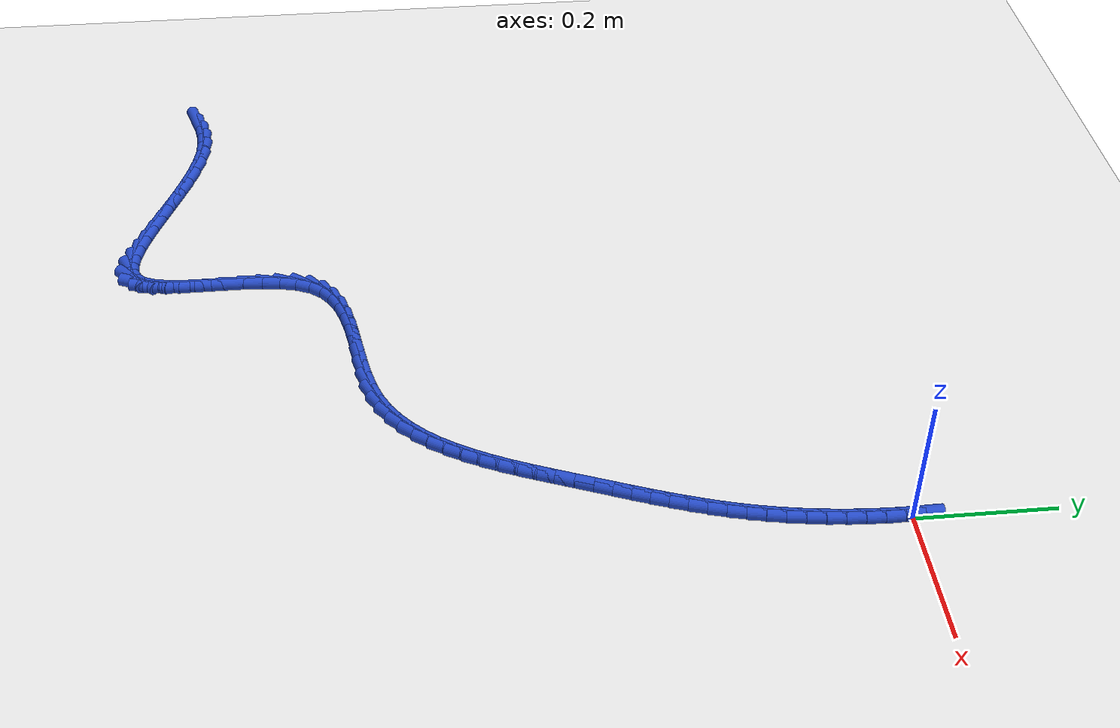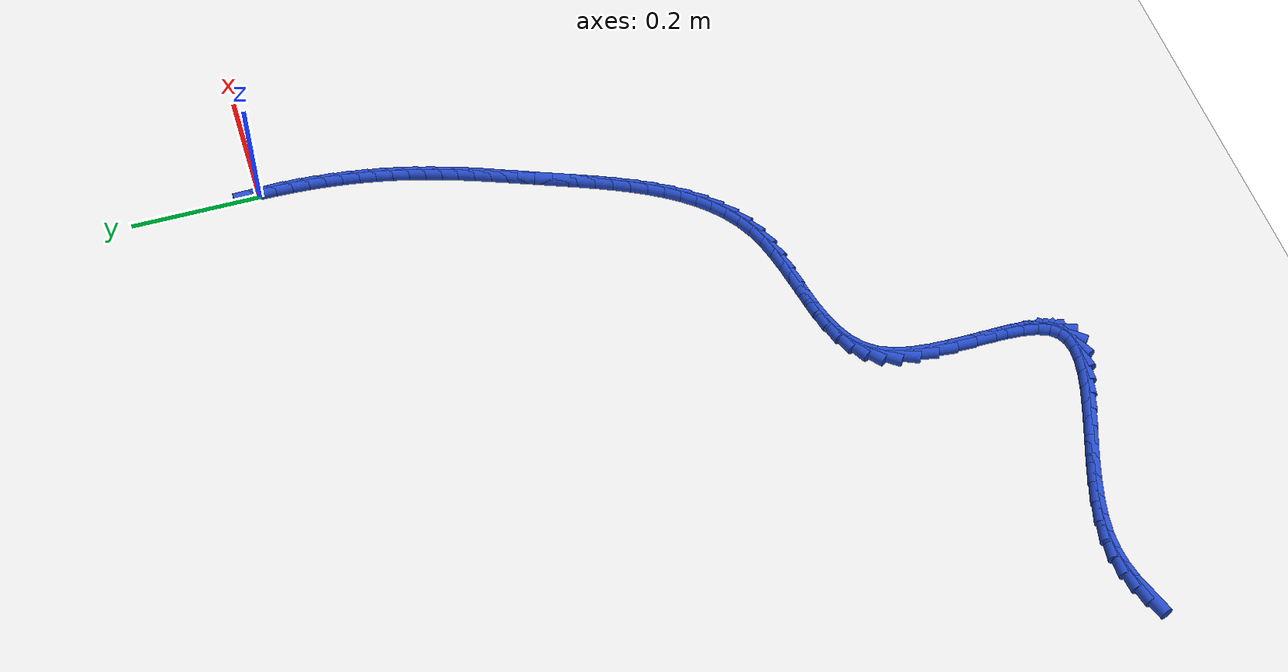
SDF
<sdf version="1.6">
 <world name="default">
  <model name="ground_plane">
   <static>1</static>
   <link name="link">
    <collision name="collision">
     <geometry><plane><normal>0 0 1</normal><size>100 100</size></plane></geometry>
     <surface><friction><ode><mu>100</mu><mu2>50</mu2></ode></friction></surface>
    </collision>
    <visual name="visual">
     <cast_shadows>0</cast_shadows>
     <geometry><plane><normal>0 0 1</normal><size>100 100</size></plane></geometry>
     <material>
      <script><uri>file://media/materials/scripts/gazebo.material</uri><name>Gazebo/WhiteGlow</name></script>
     </material>
    </visual>
   </link>
  </model>
  <model name="line">
   <link name="link_0">
    <pose>-1.3010426069826053e-18 -6.938893903907228e-18 0.01 0 1.57 -1.5448453036828746</pose>
    <collision name="collision">
     <geometry><cylinder><radius>0.01</radius><length>0.08</length></cylinder></geometry>
    </collision>
    <visual name="visual">
     <material>
      <script><name>Gazebo/Blue</name><uri>file://media/materials/scripts/gazebo.material</uri></script>
     </material>
     <geometry><cylinder><radius>0.01</radius><length>0.08</length></cylinder></geometry>
    </visual>
   </link>
   <link name="link_211">
    <pose>-1.0421098946595406 -1.0230825539883086 0.01 0 1.57 0.317607674334692</pose>
    <collision name="collision">
     <geometry><cylinder><radius>0.01</radius><length>0.08</length></cylinder></geometry>
    </collision>
    <visual name="visual">
     <material>
      <script><name>Gazebo/Blue</name><uri>file://media/materials/scripts/gazebo.material</uri></script>
     </material>
     <geometry><cylinder><radius>0.01</radius><length>0.08</length></cylinder></geometry>
    </visual>
   </link>
   <link name="link_212">
    <pose>-1.0183037763575578 -1.0152566150487345 0.01 0 1.57 0.2144882763393242</pose>
    <collision name="collision">
     <geometry><cylinder><radius>0.01</radius><length>0.08</length></cylinder></geometry>
    </collision>
    <visual name="visual">
     <material>
      <script><name>Gazebo/Blue</name><uri>file://media/materials/scripts/gazebo.material</uri></script>
     </material>
     <geometry><cylinder><radius>0.01</radius><length>0.08</length></cylinder></geometry>
    </visual>
   </link>
   <link name="link_213">
    <pose>-0.9937355144662209 -1.0099046858503384 0.01 0 1.57 0.0975102895372272</pose>
    <collision name="collision">
     <geometry><cylinder><radius>0.01</radius><length>0.08</length></cylinder></geometry>
    </collision>
    <visual name="visual">
     <material>
      <script><name>Gazebo/Blue</name><uri>file://media/materials/scripts/gazebo.material</uri></script>
     </material>
     <geometry><cylinder><radius>0.01</radius><length>0.08</length></cylinder></geometry>
    </visual>
   </link>
   <link name="link_214">
    <pose>-0.9680886635502092 -1.007395897546012 0.01 0 1.57 -0.025968251264559476</pose>
    <collision name="collision">
     <geometry><cylinder><radius>0.01</radius><length>0.08</length></cylinder></geometry>
    </collision>
    <visual name="visual">
     <material>
      <script><name>Gazebo/Blue</name><uri>file://media/materials/scripts/gazebo.material</uri></script>
     </material>
     <geometry><cylinder><radius>0.01</radius><length>0.08</length></cylinder></geometry>
    </visual>
   </link>
   <link name="link_215">
    <pose>-0.9410475708856755 -1.0080982653224784 0.01 0 1.57 -0.13913178750641958</pose>
    <collision name="collision">
     <geometry><cylinder><radius>0.01</radius><length>0.08</length></cylinder></geometry>
    </collision>
    <visual name="visual">
     <material>
      <script><name>Gazebo/Blue</name><uri>file://media/materials/scripts/gazebo.material</uri></script>
     </material>
     <geometry><cylinder><radius>0.01</radius><length>0.08</length></cylinder></geometry>
    </visual>
   </link>
   <link name="link_216">
    <pose>-0.9124980040883875 -1.0120962481262161 0.01 0 1.57 -0.22249744471879698</pose>
    <collision name="collision">
     <geometry><cylinder><radius>0.01</radius><length>0.08</length></cylinder></geometry>
    </collision>
    <visual name="visual">
     <material>
      <script><name>Gazebo/Blue</name><uri>file://media/materials/scripts/gazebo.material</uri></script>
     </material>
     <geometry><cylinder><radius>0.01</radius><length>0.08</length></cylinder></geometry>
    </visual>
   </link>
   <link name="link_217">
    <pose>-0.8827927350696438 -1.0188168639398414 0.01 0 1.57 -0.28071450738366005</pose>
    <collision name="collision">
     <geometry><cylinder><radius>0.01</radius><length>0.08</length></cylinder></geometry>
    </collision>
    <visual name="visual">
     <material>
      <script><name>Gazebo/Blue</name><uri>file://media/materials/scripts/gazebo.material</uri></script>
     </material>
     <geometry><cylinder><radius>0.01</radius><length>0.08</length></cylinder></geometry>
    </visual>
   </link>
   <link name="link_218">
    <pose>-0.8523505468354066 -1.0275942014129513 0.01 0 1.57 -0.319252918864641</pose>
    <collision name="collision">
     <geometry><cylinder><radius>0.01</radius><length>0.08</length></cylinder></geometry>
    </collision>
    <visual name="visual">
     <material>
      <script><name>Gazebo/Blue</name><uri>file://media/materials/scripts/gazebo.material</uri></script>
     </material>
     <geometry><cylinder><radius>0.01</radius><length>0.08</length></cylinder></geometry>
    </visual>
   </link>
   <link name="link_219">
    <pose>-0.8215902223916359 -1.0377623491951438 0.01 0 1.57 -0.3413788464349075</pose>
    <collision name="collision">
     <geometry><cylinder><radius>0.01</radius><length>0.08</length></cylinder></geometry>
    </collision>
    <visual name="visual">
     <material>
      <script><name>Gazebo/Blue</name><uri>file://media/materials/scripts/gazebo.material</uri></script>
     </material>
     <geometry><cylinder><radius>0.01</radius><length>0.08</length></cylinder></geometry>
    </visual>
   </link>
   <link name="link_220">
    <pose>-0.7909305447442928 -1.0486553959360163 0.01 0 1.57 -0.348534921704028</pose>
    <collision name="collision">
     <geometry><cylinder><radius>0.01</radius><length>0.08</length></cylinder></geometry>
    </collision>
    <visual name="visual">
     <material>
      <script><name>Gazebo/Blue</name><uri>file://media/materials/scripts/gazebo.material</uri></script>
     </material>
     <geometry><cylinder><radius>0.01</radius><length>0.08</length></cylinder></geometry>
    </visual>
   </link>
   <link name="link_221">
    <pose>-0.7607902968993382 -1.059607430285167 0.01 0 1.57 -0.3404647964328248</pose>
    <collision name="collision">
     <geometry><cylinder><radius>0.01</radius><length>0.08</length></cylinder></geometry>
    </collision>
    <visual name="visual">
     <material>
      <script><name>Gazebo/Blue</name><uri>file://media/materials/scripts/gazebo.material</uri></script>
     </material>
     <geometry><cylinder><radius>0.01</radius><length>0.08</length></cylinder></geometry>
    </visual>
   </link>
   <link name="link_222">
    <pose>-0.7315882618627332 -1.0699525408921926 0.01 0 1.57 -0.31496704585326984</pose>
    <collision name="collision">
     <geometry><cylinder><radius>0.01</radius><length>0.08</length></cylinder></geometry>
    </collision>
    <visual name="visual">
     <material>
      <script><name>Gazebo/Blue</name><uri>file://media/materials/scripts/gazebo.material</uri></script>
     </material>
     <geometry><cylinder><radius>0.01</radius><length>0.08</length></cylinder></geometry>
    </visual>
   </link>
   <link name="link_223">
    <pose>-0.7037432226404383 -1.0790248164066918 0.01 0 1.57 -0.26709913002457253</pose>
    <collision name="collision">
     <geometry><cylinder><radius>0.01</radius><length>0.08</length></cylinder></geometry>
    </collision>
    <visual name="visual">
     <material>
      <script><name>Gazebo/Blue</name><uri>file://media/materials/scripts/gazebo.material</uri></script>
     </material>
     <geometry><cylinder><radius>0.01</radius><length>0.08</length></cylinder></geometry>
    </visual>
   </link>
   <link name="link_224">
    <pose>-0.6776739622384147 -1.0861583454782613 0.01 0 1.57 -0.18746595312565917</pose>
    <collision name="collision">
     <geometry><cylinder><radius>0.01</radius><length>0.08</length></cylinder></geometry>
    </collision>
    <visual name="visual">
     <material>
      <script><name>Gazebo/Blue</name><uri>file://media/materials/scripts/gazebo.material</uri></script>
     </material>
     <geometry><cylinder><radius>0.01</radius><length>0.08</length></cylinder></geometry>
    </visual>
   </link>
   <link name="link_225">
    <pose>-0.6537992636626233 -1.0906872167564994 0.01 0 1.57 -0.05911364479075293</pose>
    <collision name="collision">
     <geometry><cylinder><radius>0.01</radius><length>0.08</length></cylinder></geometry>
    </collision>
    <visual name="visual">
     <material>
      <script><name>Gazebo/Blue</name><uri>file://media/materials/scripts/gazebo.material</uri></script>
     </material>
     <geometry><cylinder><radius>0.01</radius><length>0.08</length></cylinder></geometry>
    </visual>
   </link>
   <link name="link_226">
    <pose>-0.632537909919024 -1.0919455188910032 0.01 0 1.57 0.1458731745703301</pose>
    <collision name="collision">
     <geometry><cylinder><radius>0.01</radius><length>0.08</length></cylinder></geometry>
    </collision>
    <visual name="visual">
     <material>
      <script><name>Gazebo/Blue</name><uri>file://media/materials/scripts/gazebo.material</uri></script>
     </material>
     <geometry><cylinder><radius>0.01</radius><length>0.08</length></cylinder></geometry>
    </visual>
   </link>
   <link name="link_227">
    <pose>-0.6143086840135799 -1.0892673405313709 0.01 0 1.57 0.4577521518275297</pose>
    <collision name="collision">
     <geometry><cylinder><radius>0.01</radius><length>0.08</length></cylinder></geometry>
    </collision>
    <visual name="visual">
     <material>
      <script><name>Gazebo/Blue</name><uri>file://media/materials/scripts/gazebo.material</uri></script>
     </material>
     <geometry><cylinder><radius>0.01</radius><length>0.08</length></cylinder></geometry>
    </visual>
   </link>
   <link name="link_228">
    <pose>-0.5995303689522502 -1.0819867703271995 0.01 0 1.57 0.8546383671933837</pose>
    <collision name="collision">
     <geometry><cylinder><radius>0.01</radius><length>0.08</length></cylinder></geometry>
    </collision>
    <visual name="visual">
     <material>
      <script><name>Gazebo/Blue</name><uri>file://media/materials/scripts/gazebo.material</uri></script>
     </material>
     <geometry><cylinder><radius>0.01</radius><length>0.08</length></cylinder></geometry>
    </visual>
   </link>
   <link name="link_229">
    <pose>-0.5886158714737115 -1.0694455970549583 0.01 0 1.57 1.1938447559584084</pose>
    <collision name="collision">
     <geometry><cylinder><radius>0.01</radius><length>0.08</length></cylinder></geometry>
    </collision>
    <visual name="visual">
     <material>
      <script><name>Gazebo/Blue</name><uri>file://media/materials/scripts/gazebo.material</uri></script>
     </material>
     <geometry><cylinder><radius>0.01</radius><length>0.08</length></cylinder></geometry>
    </visual>
   </link>
   <link name="link_230">
    <pose>-0.5815368102622224 -1.0515638633112863 0.01 0 1.57 1.3930139514664992</pose>
    <collision name="collision">
     <geometry><cylinder><radius>0.01</radius><length>0.08</length></cylinder></geometry>
    </collision>
    <visual name="visual">
     <material>
      <script><name>Gazebo/Blue</name><uri>file://media/materials/scripts/gazebo.material</uri></script>
     </material>
     <geometry><cylinder><radius>0.01</radius><length>0.08</length></cylinder></geometry>
    </visual>
   </link>
   <link name="link_231">
    <pose>-0.5775242399965008 -1.0292320299060451 0.01 0 1.57 1.501684742533671</pose>
    <collision name="collision">
     <geometry><cylinder><radius>0.01</radius><length>0.08</length></cylinder></geometry>
    </collision>
    <visual name="visual">
     <material>
      <script><name>Gazebo/Blue</name><uri>file://media/materials/scripts/gazebo.material</uri></script>
     </material>
     <geometry><cylinder><radius>0.01</radius><length>0.08</length></cylinder></geometry>
    </visual>
   </link>
   <link name="link_232">
    <pose>-0.5757384076401186 -1.0034333424670192 0.01 0 1.57 1.5566948886269412</pose>
    <collision name="collision">
     <geometry><cylinder><radius>0.01</radius><length>0.08</length></cylinder></geometry>
    </collision>
    <visual name="visual">
     <material>
      <script><name>Gazebo/Blue</name><uri>file://media/materials/scripts/gazebo.material</uri></script>
     </material>
     <geometry><cylinder><radius>0.01</radius><length>0.08</length></cylinder></geometry>
    </visual>
   </link>
   <link name="link_233">
    <pose>-0.5753395601566468 -0.9751510466219943 0.01 0 1.57 -1.565814128021503</pose>
    <collision name="collision">
     <geometry><cylinder><radius>0.01</radius><length>0.08</length></cylinder></geometry>
    </collision>
    <visual name="visual">
     <material>
      <script><name>Gazebo/Blue</name><uri>file://media/materials/scripts/gazebo.material</uri></script>
     </material>
     <geometry><cylinder><radius>0.01</radius><length>0.08</length></cylinder></geometry>
    </visual>
   </link>
   <link name="link_234">
    <pose>-0.5754879445096571 -0.9453683879987541 0.01 0 1.57 1.5660393358260989</pose>
    <collision name="collision">
     <geometry><cylinder><radius>0.01</radius><length>0.08</length></cylinder></geometry>
    </collision>
    <visual name="visual">
     <material>
      <script><name>Gazebo/Blue</name><uri>file://media/materials/scripts/gazebo.material</uri></script>
     </material>
     <geometry><cylinder><radius>0.01</radius><length>0.08</length></cylinder></geometry>
    </visual>
   </link>
   <link name="link_235">
    <pose>-0.5753438076627211 -0.9150686122250855 0.01 0 1.57 1.528038124831188</pose>
    <collision name="collision">
     <geometry><cylinder><radius>0.01</radius><length>0.08</length></cylinder></geometry>
    </collision>
    <visual name="visual">
     <material>
      <script><name>Gazebo/Blue</name><uri>file://media/materials/scripts/gazebo.material</uri></script>
     </material>
     <geometry><cylinder><radius>0.01</radius><length>0.08</length></cylinder></geometry>
    </visual>
   </link>
   <link name="link_236">
    <pose>-0.5740673965794103 -0.8852349649287733 0.01 0 1.57 1.4568470830779776</pose>
    <collision name="collision">
     <geometry><cylinder><radius>0.01</radius><length>0.08</length></cylinder></geometry>
    </collision>
    <visual name="visual">
     <material>
      <script><name>Gazebo/Blue</name><uri>file://media/materials/scripts/gazebo.material</uri></script>
     </material>
     <geometry><cylinder><radius>0.01</radius><length>0.08</length></cylinder></geometry>
    </visual>
   </link>
   <link name="link_237">
    <pose>-0.5708189582232963 -0.8568506917376019 0.01 0 1.57 1.3413877907786815</pose>
    <collision name="collision">
     <geometry><cylinder><radius>0.01</radius><length>0.08</length></cylinder></geometry>
    </collision>
    <visual name="visual">
     <material>
      <script><name>Gazebo/Blue</name><uri>file://media/materials/scripts/gazebo.material</uri></script>
     </material>
     <geometry><cylinder><radius>0.01</radius><length>0.08</length></cylinder></geometry>
    </visual>
   </link>
   <link name="link_238">
    <pose>-0.5647587395579503 -0.8308990382793566 0.01 0 1.57 1.1638985061493299</pose>
    <collision name="collision">
     <geometry><cylinder><radius>0.01</radius><length>0.08</length></cylinder></geometry>
    </collision>
    <visual name="visual">
     <material>
      <script><name>Gazebo/Blue</name><uri>file://media/materials/scripts/gazebo.material</uri></script>
     </material>
     <geometry><cylinder><radius>0.01</radius><length>0.08</length></cylinder></geometry>
    </visual>
   </link>
   <link name="link_239">
    <pose>-0.5550469875469443 -0.8083632501818228 0.01 0 1.57 0.9201697066480933</pose>
    <collision name="collision">
     <geometry><cylinder><radius>0.01</radius><length>0.08</length></cylinder></geometry>
    </collision>
    <visual name="visual">
     <material>
      <script><name>Gazebo/Blue</name><uri>file://media/materials/scripts/gazebo.material</uri></script>
     </material>
     <geometry><cylinder><radius>0.01</radius><length>0.08</length></cylinder></geometry>
    </visual>
   </link>
   <link name="link_240">
    <pose>-0.5410583915595739 -0.7899860651938452 0.01 0 1.57 0.6825916990626054</pose>
    <collision name="collision">
     <geometry><cylinder><radius>0.01</radius><length>0.08</length></cylinder></geometry>
    </collision>
    <visual name="visual">
     <material>
      <script><name>Gazebo/Blue</name><uri>file://media/materials/scripts/gazebo.material</uri></script>
     </material>
     <geometry><cylinder><radius>0.01</radius><length>0.08</length></cylinder></geometry>
    </visual>
   </link>
   <link name="link_241">
    <pose>-0.5231402514220694 -0.7754193898117451 0.01 0 1.57 0.4933800865785196</pose>
    <collision name="collision">
     <geometry><cylinder><radius>0.01</radius><length>0.08</length></cylinder></geometry>
    </collision>
    <visual name="visual">
     <material>
      <script><name>Gazebo/Blue</name><uri>file://media/materials/scripts/gazebo.material</uri></script>
     </material>
     <geometry><cylinder><radius>0.01</radius><length>0.08</length></cylinder></geometry>
    </visual>
   </link>
   <link name="link_242">
    <pose>-0.5019154724375876 -0.7640060252107372 0.01 0 1.57 0.35699421562684364</pose>
    <collision name="collision">
     <geometry><cylinder><radius>0.01</radius><length>0.08</length></cylinder></geometry>
    </collision>
    <visual name="visual">
     <material>
      <script><name>Gazebo/Blue</name><uri>file://media/materials/scripts/gazebo.material</uri></script>
     </material>
     <geometry><cylinder><radius>0.01</radius><length>0.08</length></cylinder></geometry>
    </visual>
   </link>
   <link name="link_243">
    <pose>-0.4780069777651427 -0.7550887525397999 0.01 0 1.57 0.26610390159643726</pose>
    <collision name="collision">
     <geometry><cylinder><radius>0.01</radius><length>0.08</length></cylinder></geometry>
    </collision>
    <visual name="visual">
     <material>
      <script><name>Gazebo/Blue</name><uri>file://media/materials/scripts/gazebo.material</uri></script>
     </material>
     <geometry><cylinder><radius>0.01</radius><length>0.08</length></cylinder></geometry>
    </visual>
   </link>
   <link name="link_244">
    <pose>-0.4520376905637515 -0.7480103529479112 0.01 0 1.57 0.21192286297834886</pose>
    <collision name="collision">
     <geometry><cylinder><radius>0.01</radius><length>0.08</length></cylinder></geometry>
    </collision>
    <visual name="visual">
     <material>
      <script><name>Gazebo/Blue</name><uri>file://media/materials/scripts/gazebo.material</uri></script>
     </material>
     <geometry><cylinder><radius>0.01</radius><length>0.08</length></cylinder></geometry>
    </visual>
   </link>
   <link name="link_245">
    <pose>-0.42463053399242856 -0.74211360758405 0.01 0 1.57 0.18810768780435594</pose>
    <collision name="collision">
     <geometry><cylinder><radius>0.01</radius><length>0.08</length></cylinder></geometry>
    </collision>
    <visual name="visual">
     <material>
      <script><name>Gazebo/Blue</name><uri>file://media/materials/scripts/gazebo.material</uri></script>
     </material>
     <geometry><cylinder><radius>0.01</radius><length>0.08</length></cylinder></geometry>
    </visual>
   </link>
   <link name="link_246">
    <pose>-0.39640843121018876 -0.7367412975971936 0.01 0 1.57 0.19137392043018053</pose>
    <collision name="collision">
     <geometry><cylinder><radius>0.01</radius><length>0.08</length></cylinder></geometry>
    </collision>
    <visual name="visual">
     <material>
      <script><name>Gazebo/Blue</name><uri>file://media/materials/scripts/gazebo.material</uri></script>
     </material>
     <geometry><cylinder><radius>0.01</radius><length>0.08</length></cylinder></geometry>
    </visual>
   </link>
   <link name="link_247">
    <pose>-0.3679943053760473 -0.7312362041363206 0.01 0 1.57 0.22127600638904238</pose>
    <collision name="collision">
     <geometry><cylinder><radius>0.01</radius><length>0.08</length></cylinder></geometry>
    </collision>
    <visual name="visual">
     <material>
      <script><name>Gazebo/Blue</name><uri>file://media/materials/scripts/gazebo.material</uri></script>
     </material>
     <geometry><cylinder><radius>0.01</radius><length>0.08</length></cylinder></geometry>
    </visual>
   </link>
   <link name="link_248">
    <pose>-0.3400110796490194 -0.724941108350409 0.01 0 1.57 0.27995372419485226</pose>
    <collision name="collision">
     <geometry><cylinder><radius>0.01</radius><length>0.08</length></cylinder></geometry>
    </collision>
    <visual name="visual">
     <material>
      <script><name>Gazebo/Blue</name><uri>file://media/materials/scripts/gazebo.material</uri></script>
     </material>
     <geometry><cylinder><radius>0.01</radius><length>0.08</length></cylinder></geometry>
    </visual>
   </link>
   <link name="link_249">
    <pose>-0.3130816771881201 -0.7171987913884377 0.01 0 1.57 0.3717745165384926</pose>
    <collision name="collision">
     <geometry><cylinder><radius>0.01</radius><length>0.08</length></cylinder></geometry>
    </collision>
    <visual name="visual">
     <material>
      <script><name>Gazebo/Blue</name><uri>file://media/materials/scripts/gazebo.material</uri></script>
     </material>
     <geometry><cylinder><radius>0.01</radius><length>0.08</length></cylinder></geometry>
    </visual>
   </link>
   <link name="link_250">
    <pose>-0.2878286317975839 -0.7073524764417823 0.01 0 1.57 0.4912704525516437</pose>
    <collision name="collision">
     <geometry><cylinder><radius>0.01</radius><length>0.08</length></cylinder></geometry>
    </collision>
    <visual name="visual">
     <material>
      <script><name>Gazebo/Blue</name><uri>file://media/materials/scripts/gazebo.material</uri></script>
     </material>
     <geometry><cylinder><radius>0.01</radius><length>0.08</length></cylinder></geometry>
    </visual>
   </link>
   <link name="link_251">
    <pose>-0.2646792288836743 -0.6949670561775941 0.01 0 1.57 0.6103540427182926</pose>
    <collision name="collision">
     <geometry><cylinder><radius>0.01</radius><length>0.08</length></cylinder></geometry>
    </collision>
    <visual name="visual">
     <material>
      <script><name>Gazebo/Blue</name><uri>file://media/materials/scripts/gazebo.material</uri></script>
     </material>
     <geometry><cylinder><radius>0.01</radius><length>0.08</length></cylinder></geometry>
    </visual>
   </link>
   <link name="link_252">
    <pose>-0.24354944981605425 -0.680187917130999 0.01 0 1.57 0.7207767594426977</pose>
    <collision name="collision">
     <geometry><cylinder><radius>0.01</radius><length>0.08</length></cylinder></geometry>
    </collision>
    <visual name="visual">
     <material>
      <script><name>Gazebo/Blue</name><uri>file://media/materials/scripts/gazebo.material</uri></script>
     </material>
     <geometry><cylinder><radius>0.01</radius><length>0.08</length></cylinder></geometry>
    </visual>
   </link>
   <link name="link_253">
    <pose>-0.22427260419705689 -0.6632543047753608 0.01 0 1.57 0.8199140018435508</pose>
    <collision name="collision">
     <geometry><cylinder><radius>0.01</radius><length>0.08</length></cylinder></geometry>
    </collision>
    <visual name="visual">
     <material>
      <script><name>Gazebo/Blue</name><uri>file://media/materials/scripts/gazebo.material</uri></script>
     </material>
     <geometry><cylinder><radius>0.01</radius><length>0.08</length></cylinder></geometry>
    </visual>
   </link>
   <link name="link_254">
    <pose>-0.20668200162901346 -0.6444054645840416 0.01 0 1.57 0.9065040982754954</pose>
    <collision name="collision">
     <geometry><cylinder><radius>0.01</radius><length>0.08</length></cylinder></geometry>
    </collision>
    <visual name="visual">
     <material>
      <script><name>Gazebo/Blue</name><uri>file://media/materials/scripts/gazebo.material</uri></script>
     </material>
     <geometry><cylinder><radius>0.01</radius><length>0.08</length></cylinder></geometry>
    </visual>
   </link>
   <link name="link_255">
    <pose>-0.19061095171425557 -0.6238806420304037 0.01 0 1.57 0.9803656800337629</pose>
    <collision name="collision">
     <geometry><cylinder><radius>0.01</radius><length>0.08</length></cylinder></geometry>
    </collision>
    <visual name="visual">
     <material>
      <script><name>Gazebo/Blue</name><uri>file://media/materials/scripts/gazebo.material</uri></script>
     </material>
     <geometry><cylinder><radius>0.01</radius><length>0.08</length></cylinder></geometry>
    </visual>
   </link>
   <link name="link_256">
    <pose>-0.1758927640551152 -0.6019190825878099 0.01 0 1.57 1.0419950673718177</pose>
    <collision name="collision">
     <geometry><cylinder><radius>0.01</radius><length>0.08</length></cylinder></geometry>
    </collision>
    <visual name="visual">
     <material>
      <script><name>Gazebo/Blue</name><uri>file://media/materials/scripts/gazebo.material</uri></script>
     </material>
     <geometry><cylinder><radius>0.01</radius><length>0.08</length></cylinder></geometry>
    </visual>
   </link>
   <link name="link_257">
    <pose>-0.16236074825392413 -0.5787600317296226 0.01 0 1.57 1.0922063764742094</pose>
    <collision name="collision">
     <geometry><cylinder><radius>0.01</radius><length>0.08</length></cylinder></geometry>
    </collision>
    <visual name="visual">
     <material>
      <script><name>Gazebo/Blue</name><uri>file://media/materials/scripts/gazebo.material</uri></script>
     </material>
     <geometry><cylinder><radius>0.01</radius><length>0.08</length></cylinder></geometry>
    </visual>
   </link>
   <link name="link_258">
    <pose>-0.14984821391301412 -0.5546427349292041 0.01 0 1.57 1.131874688487274</pose>
    <collision name="collision">
     <geometry><cylinder><radius>0.01</radius><length>0.08</length></cylinder></geometry>
    </collision>
    <visual name="visual">
     <material>
      <script><name>Gazebo/Blue</name><uri>file://media/materials/scripts/gazebo.material</uri></script>
     </material>
     <geometry><cylinder><radius>0.01</radius><length>0.08</length></cylinder></geometry>
    </visual>
   </link>
   <link name="link_259">
    <pose>-0.138188470634717 -0.5298064376599171 0.01 0 1.57 1.1617769862403808</pose>
    <collision name="collision">
     <geometry><cylinder><radius>0.01</radius><length>0.08</length></cylinder></geometry>
    </collision>
    <visual name="visual">
     <material>
      <script><name>Gazebo/Blue</name><uri>file://media/materials/scripts/gazebo.material</uri></script>
     </material>
     <geometry><cylinder><radius>0.01</radius><length>0.08</length></cylinder></geometry>
    </visual>
   </link>
   <link name="link_260">
    <pose>-0.1272148280213647 -0.5044903853951241 0.01 0 1.57 1.1825019019035992</pose>
    <collision name="collision">
     <geometry><cylinder><radius>0.01</radius><length>0.08</length></cylinder></geometry>
    </collision>
    <visual name="visual">
     <material>
      <script><name>Gazebo/Blue</name><uri>file://media/materials/scripts/gazebo.material</uri></script>
     </material>
     <geometry><cylinder><radius>0.01</radius><length>0.08</length></cylinder></geometry>
    </visual>
   </link>
   <link name="link_261">
    <pose>-0.1167605956752886 -0.47893382360818687 0.01 0 1.57 1.1943988557966205</pose>
    <collision name="collision">
     <geometry><cylinder><radius>0.01</radius><length>0.08</length></cylinder></geometry>
    </collision>
    <visual name="visual">
     <material>
      <script><name>Gazebo/Blue</name><uri>file://media/materials/scripts/gazebo.material</uri></script>
     </material>
     <geometry><cylinder><radius>0.01</radius><length>0.08</length></cylinder></geometry>
    </visual>
   </link>
   <link name="link_262">
    <pose>-0.10665908319882117 -0.4533759977724693 0.01 0 1.57 1.1975712759285706</pose>
    <collision name="collision">
     <geometry><cylinder><radius>0.01</radius><length>0.08</length></cylinder></geometry>
    </collision>
    <visual name="visual">
     <material>
      <script><name>Gazebo/Blue</name><uri>file://media/materials/scripts/gazebo.material</uri></script>
     </material>
     <geometry><cylinder><radius>0.01</radius><length>0.08</length></cylinder></geometry>
    </visual>
   </link>
   <link name="link_263">
    <pose>-0.0967441208433204 -0.4280554708432032 0.01 0 1.57 1.1958176742725</pose>
    <collision name="collision">
     <geometry><cylinder><radius>0.01</radius><length>0.08</length></cylinder></geometry>
    </collision>
    <visual name="visual">
     <material>
      <script><name>Gazebo/Blue</name><uri>file://media/materials/scripts/gazebo.material</uri></script>
     </material>
     <geometry><cylinder><radius>0.01</radius><length>0.08</length></cylinder></geometry>
    </visual>
   </link>
   <link name="link_264">
    <pose>-0.08692584242402877 -0.4031107795331926 0.01 0 1.57 1.197251665357873</pose>
    <collision name="collision">
     <geometry><cylinder><radius>0.01</radius><length>0.08</length></cylinder></geometry>
    </collision>
    <visual name="visual">
     <material>
      <script><name>Gazebo/Blue</name><uri>file://media/materials/scripts/gazebo.material</uri></script>
     </material>
     <geometry><cylinder><radius>0.01</radius><length>0.08</length></cylinder></geometry>
    </visual>
   </link>
   <link name="link_265">
    <pose>-0.07727033184809431 -0.3784760257830557 0.01 0 1.57 1.203017510701966</pose>
    <collision name="collision">
     <geometry><cylinder><radius>0.01</radius><length>0.08</length></cylinder></geometry>
    </collision>
    <visual name="visual">
     <material>
      <script><name>Gazebo/Blue</name><uri>file://media/materials/scripts/gazebo.material</uri></script>
     </material>
     <geometry><cylinder><radius>0.01</radius><length>0.08</length></cylinder></geometry>
    </visual>
   </link>
   <link name="link_266">
    <pose>-0.06786272299304254 -0.3540603389520755 0.01 0 1.57 1.213225914301617</pose>
    <collision name="collision">
     <geometry><cylinder><radius>0.01</radius><length>0.08</length></cylinder></geometry>
    </collision>
    <visual name="visual">
     <material>
      <script><name>Gazebo/Blue</name><uri>file://media/materials/scripts/gazebo.material</uri></script>
     </material>
     <geometry><cylinder><radius>0.01</radius><length>0.08</length></cylinder></geometry>
    </visual>
   </link>
   <link name="link_267">
    <pose>-0.058788149736399085 -0.32977284839953513 0.01 0 1.57 1.227932193448842</pose>
    <collision name="collision">
     <geometry><cylinder><radius>0.01</radius><length>0.08</length></cylinder></geometry>
    </collision>
    <visual name="visual">
     <material>
      <script><name>Gazebo/Blue</name><uri>file://media/materials/scripts/gazebo.material</uri></script>
     </material>
     <geometry><cylinder><radius>0.01</radius><length>0.08</length></cylinder></geometry>
    </visual>
   </link>
   <link name="link_268">
    <pose>-0.05013174595568956 -0.3055226834847177 0.01 0 1.57 1.2471264157038242</pose>
    <collision name="collision">
     <geometry><cylinder><radius>0.01</radius><length>0.08</length></cylinder></geometry>
    </collision>
    <visual name="visual">
     <material>
      <script><name>Gazebo/Blue</name><uri>file://media/materials/scripts/gazebo.material</uri></script>
     </material>
     <geometry><cylinder><radius>0.01</radius><length>0.08</length></cylinder></geometry>
    </visual>
   </link>
   <link name="link_269">
    <pose>-0.04197864552843957 -0.2812189735669065 0.01 0 1.57 1.2707227224188136</pose>
    <collision name="collision">
     <geometry><cylinder><radius>0.01</radius><length>0.08</length></cylinder></geometry>
    </collision>
    <visual name="visual">
     <material>
      <script><name>Gazebo/Blue</name><uri>file://media/materials/scripts/gazebo.material</uri></script>
     </material>
     <geometry><cylinder><radius>0.01</radius><length>0.08</length></cylinder></geometry>
    </visual>
   </link>
   <link name="link_270">
    <pose>-0.03441398233217452 -0.25677084800538363 0.01 0 1.57 1.298549029333734</pose>
    <collision name="collision">
     <geometry><cylinder><radius>0.01</radius><length>0.08</length></cylinder></geometry>
    </collision>
    <visual name="visual">
     <material>
      <script><name>Gazebo/Blue</name><uri>file://media/materials/scripts/gazebo.material</uri></script>
     </material>
     <geometry><cylinder><radius>0.01</radius><length>0.08</length></cylinder></geometry>
    </visual>
   </link>
   <link name="link_271">
    <pose>-0.027522890244420478 -0.23208743615943378 0.01 0 1.57 1.3301502371651395</pose>
    <collision name="collision">
     <geometry><cylinder><radius>0.01</radius><length>0.08</length></cylinder></geometry>
    </collision>
    <visual name="visual">
     <material>
      <script><name>Gazebo/Blue</name><uri>file://media/materials/scripts/gazebo.material</uri></script>
     </material>
     <geometry><cylinder><radius>0.01</radius><length>0.08</length></cylinder></geometry>
    </visual>
   </link>
   <link name="link_272">
    <pose>-0.021386903669658952 -0.20708357815989767 0.01 0 1.57 1.362637182233642</pose>
    <collision name="collision">
     <geometry><cylinder><radius>0.01</radius><length>0.08</length></cylinder></geometry>
    </collision>
    <visual name="visual">
     <material>
      <script><name>Gazebo/Blue</name><uri>file://media/materials/scripts/gazebo.material</uri></script>
     </material>
     <geometry><cylinder><radius>0.01</radius><length>0.08</length></cylinder></geometry>
    </visual>
   </link>
   <link name="link_273">
    <pose>-0.016036918807361755 -0.18175445457006567 0.01 0 1.57 1.3941223820631736</pose>
    <collision name="collision">
     <geometry><cylinder><radius>0.01</radius><length>0.08</length></cylinder></geometry>
    </collision>
    <visual name="visual">
     <material>
      <script><name>Gazebo/Blue</name><uri>file://media/materials/scripts/gazebo.material</uri></script>
     </material>
     <geometry><cylinder><radius>0.01</radius><length>0.08</length></cylinder></geometry>
    </visual>
   </link>
   <link name="link_274">
    <pose>-0.0114664346384242 -0.15615457879712036 0.01 0 1.57 1.4247053557941713</pose>
    <collision name="collision">
     <geometry><cylinder><radius>0.01</radius><length>0.08</length></cylinder></geometry>
    </collision>
    <visual name="visual">
     <material>
      <script><name>Gazebo/Blue</name><uri>file://media/materials/scripts/gazebo.material</uri></script>
     </material>
     <geometry><cylinder><radius>0.01</radius><length>0.08</length></cylinder></geometry>
    </visual>
   </link>
   <link name="link_275">
    <pose>-0.007668075373822161 -0.1303398521211677 0.01 0 1.57 1.4545275362263674</pose>
    <collision name="collision">
     <geometry><cylinder><radius>0.01</radius><length>0.08</length></cylinder></geometry>
    </collision>
    <visual name="visual">
     <material>
      <script><name>Gazebo/Blue</name><uri>file://media/materials/scripts/gazebo.material</uri></script>
     </material>
     <geometry><cylinder><radius>0.01</radius><length>0.08</length></cylinder></geometry>
    </visual>
   </link>
   <link name="link_276">
    <pose>-0.0046344652245314975 -0.10436617582231353 0.01 0 1.57 1.4837270399708187</pose>
    <collision name="collision">
     <geometry><cylinder><radius>0.01</radius><length>0.08</length></cylinder></geometry>
    </collision>
    <visual name="visual">
     <material>
      <script><name>Gazebo/Blue</name><uri>file://media/materials/scripts/gazebo.material</uri></script>
     </material>
     <geometry><cylinder><radius>0.01</radius><length>0.08</length></cylinder></geometry>
    </visual>
   </link>
   <link name="link_277">
    <pose>-0.0023582284015280838 -0.07828945118066383 0.01 0 1.57 1.5124394965529504</pose>
    <collision name="collision">
     <geometry><cylinder><radius>0.01</radius><length>0.08</length></cylinder></geometry>
    </collision>
    <visual name="visual">
     <material>
      <script><name>Gazebo/Blue</name><uri>file://media/materials/scripts/gazebo.material</uri></script>
     </material>
     <geometry><cylinder><radius>0.01</radius><length>0.08</length></cylinder></geometry>
    </visual>
   </link>
   <link name="link_278">
    <pose>-0.0008319891157877854 -0.05216557947632454 0.01 0 1.57 1.540799047205233</pose>
    <collision name="collision">
     <geometry><cylinder><radius>0.01</radius><length>0.08</length></cylinder></geometry>
    </collision>
    <visual name="visual">
     <material>
      <script><name>Gazebo/Blue</name><uri>file://media/materials/scripts/gazebo.material</uri></script>
     </material>
     <geometry><cylinder><radius>0.01</radius><length>0.08</length></cylinder></geometry>
    </visual>
   </link>
   <link name="link_279">
    <pose>-4.8371578286450154e-05 -0.0260504619894007 0.01 0 1.57 1.5689394874531057</pose>
    <collision name="collision">
     <geometry><cylinder><radius>0.01</radius><length>0.08</length></cylinder></geometry>
    </collision>
    <visual name="visual">
     <material>
      <script><name>Gazebo/Blue</name><uri>file://media/materials/scripts/gazebo.material</uri></script>
     </material>
     <geometry><cylinder><radius>0.01</radius><length>0.08</length></cylinder></geometry>
    </visual>
   </link>
  </model>
 </world>
</sdf>
